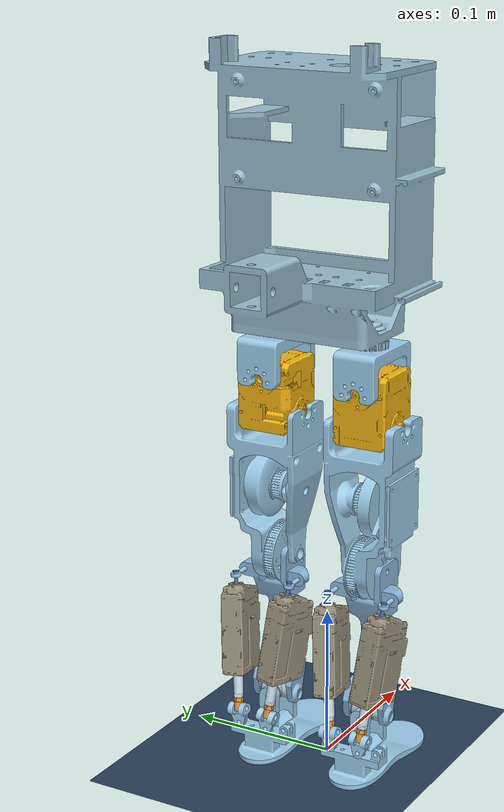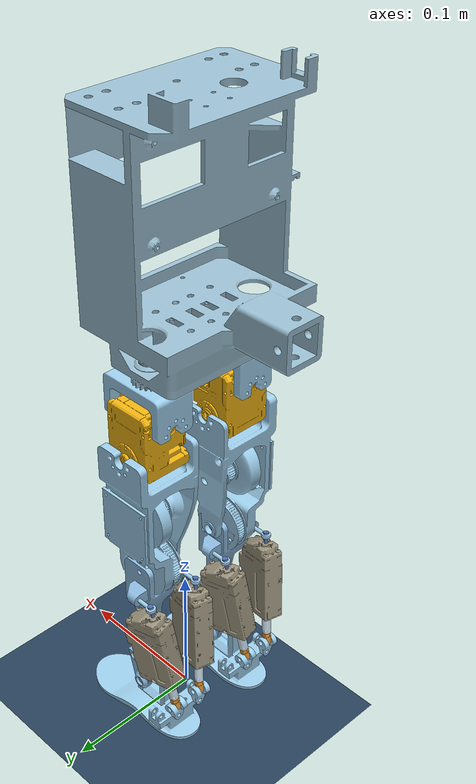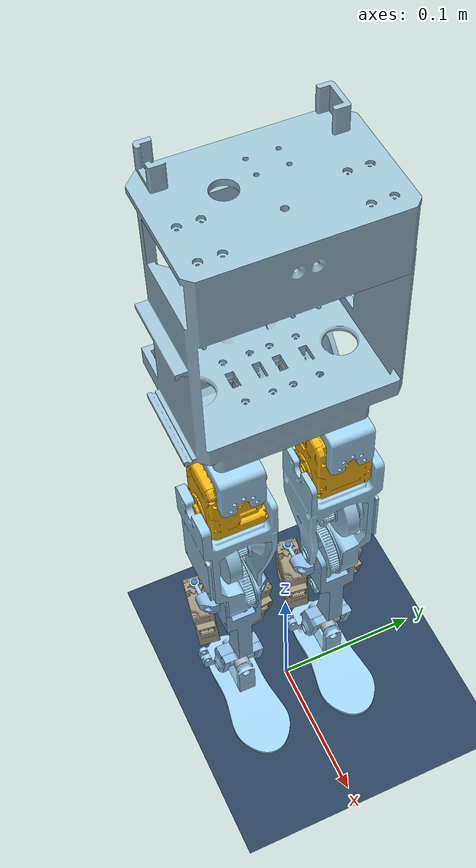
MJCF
<mujoco model="base_legs_scene">
    <include file="base_legs.xml" />
    <statistic center="0 0 0.2" extent="0.6" />
    <visual>
        <headlight diffuse="0.6 0.6 0.6" ambient="0.3 0.3 0.3" specular="0 0 0" />
        <rgba haze="0.15 0.25 0.35 1" />
        <global azimuth="160" elevation="-20" />
    </visual>
    <asset>
        <texture type="skybox" builtin="gradient" rgb1="0.3 0.5 0.7" rgb2="0 0 0" width="512" height="3072" />
        <texture type="2d" name="groundplane" builtin="checker" mark="edge" rgb1="0.2 0.3 0.4" rgb2="0.1 0.2 0.3" markrgb="0.8 0.8 0.8" width="300" height="300" />
        <material name="groundplane" texture="groundplane" texuniform="true" texrepeat="5 5" reflectance="0.0" />
    </asset>
    <worldbody>
        <light pos="0 0 1.5" dir="0 0 -1" directional="true" />
        <geom name="floor" size="0 0 0.05" type="plane" material="groundplane" />
    </worldbody>
</mujoco>

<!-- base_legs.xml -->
<mujoco model="base_legs">
  <compiler angle="radian" />
  <asset>
    <mesh name="body_link_visual" file="../assemblies/no_body/meshes/body_link_visual.stl" />
    <mesh name="body_link_collision" file="collisions/body_link_collision.stl" />
    <mesh name="left_hip_yaw_link_visual" file="../assemblies/left_3R+RH5_leg/meshes/left_hip_yaw_link_visual.stl" />
    <mesh name="left_hip_roll_link_visual" file="../assemblies/left_3R+RH5_leg/meshes/left_hip_roll_link_visual.stl" />
    <mesh name="left_hip_roll_link_collision" file="collisions/left_hip_roll_link_collision.stl" />
    <mesh name="left_hip_pitch_link_visual" file="../assemblies/left_3R+RH5_leg/meshes/left_hip_pitch_link_visual.stl" />
    <mesh name="left_hip_pitch_link_collision" file="collisions/left_hip_pitch_link_collision.stl" />
    <mesh name="left_calf_link_visual" file="../assemblies/left_3R+RH5_leg/meshes/left_calf_link_visual.stl" />
    <mesh name="left_calf_link_collision" file="collisions/left_calf_link_collision.stl" />
    <mesh name="left_ank_pitch_link_visual" file="../assemblies/left_3R+RH5_leg/meshes/left_ank_pitch_link_visual.stl" />
    <mesh name="left_ank_roll_link_visual" file="../assemblies/left_3R+RH5_leg/meshes/left_ank_roll_link_visual.stl" />
    <mesh name="left_ank_roll_link_collision" file="collisions/left_ank_roll_link_collision.stl" />
    <mesh name="left_ank_rr_link_visual" file="../assemblies/left_3R+RH5_leg/meshes/left_ank_rr_link_visual.stl" />
    <mesh name="left_12lf_rod_end_visual" file="../assemblies/left_3R+RH5_leg/meshes/left_12lf_rod_end_visual.stl" />
    <mesh name="left_ank_rr_link_2_visual" file="../assemblies/left_3R+RH5_leg/meshes/left_ank_rr_link_2_visual.stl" />
    <mesh name="left_12lf_rod_end_2_visual" file="../assemblies/left_3R+RH5_leg/meshes/left_12lf_rod_end_2_visual.stl" />
    <mesh name="left_ball_joint_container_visual" file="../assemblies/left_3R+RH5_leg/meshes/left_ball_joint_container_visual.stl" />
    <mesh name="left_ball_joint_ball_visual" file="../assemblies/left_3R+RH5_leg/meshes/left_ball_joint_ball_visual.stl" />
    <mesh name="left_12lf_visual" file="../assemblies/left_3R+RH5_leg/meshes/left_12lf_visual.stl" />
    <mesh name="left_12lf_rod_visual" file="../assemblies/left_3R+RH5_leg/meshes/left_12lf_rod_visual.stl" />
    <mesh name="left_ball_joint_container_2_visual" file="../assemblies/left_3R+RH5_leg/meshes/left_ball_joint_container_2_visual.stl" />
    <mesh name="left_ball_joint_ball_2_visual" file="../assemblies/left_3R+RH5_leg/meshes/left_ball_joint_ball_2_visual.stl" />
    <mesh name="left_12lf_2_visual" file="../assemblies/left_3R+RH5_leg/meshes/left_12lf_2_visual.stl" />
    <mesh name="left_12lf_rod_2_visual" file="../assemblies/left_3R+RH5_leg/meshes/left_12lf_rod_2_visual.stl" />
    <mesh name="right_hip_yaw_link_visual" file="../assemblies/right_3R+RH5_leg/meshes/right_hip_yaw_link_visual.stl" />
    <mesh name="right_hip_roll_link_visual" file="../assemblies/right_3R+RH5_leg/meshes/right_hip_roll_link_visual.stl" />
    <mesh name="right_hip_roll_link_collision" file="collisions/right_hip_roll_link_collision.stl" />
    <mesh name="right_hip_pitch_link_visual" file="../assemblies/right_3R+RH5_leg/meshes/right_hip_pitch_link_visual.stl" />
    <mesh name="right_hip_pitch_link_collision" file="collisions/right_hip_pitch_link_collision.stl" />
    <mesh name="right_calf_link_visual" file="../assemblies/right_3R+RH5_leg/meshes/right_calf_link_visual.stl" />
    <mesh name="right_calf_link_collision" file="collisions/right_calf_link_collision.stl" />
    <mesh name="right_ank_pitch_link_visual" file="../assemblies/right_3R+RH5_leg/meshes/right_ank_pitch_link_visual.stl" />
    <mesh name="right_ank_roll_link_visual" file="../assemblies/right_3R+RH5_leg/meshes/right_ank_roll_link_visual.stl" />
    <mesh name="right_ank_roll_link_collision" file="collisions/right_ank_roll_link_collision.stl" />
    <mesh name="right_ank_rr_link_visual" file="../assemblies/right_3R+RH5_leg/meshes/right_ank_rr_link_visual.stl" />
    <mesh name="right_12lf_rod_end_visual" file="../assemblies/right_3R+RH5_leg/meshes/right_12lf_rod_end_visual.stl" />
    <mesh name="right_ank_rr_link_2_visual" file="../assemblies/right_3R+RH5_leg/meshes/right_ank_rr_link_2_visual.stl" />
    <mesh name="right_12lf_rod_end_2_visual" file="../assemblies/right_3R+RH5_leg/meshes/right_12lf_rod_end_2_visual.stl" />
    <mesh name="right_ball_joint_container_visual" file="../assemblies/right_3R+RH5_leg/meshes/right_ball_joint_container_visual.stl" />
    <mesh name="right_ball_joint_ball_visual" file="../assemblies/right_3R+RH5_leg/meshes/right_ball_joint_ball_visual.stl" />
    <mesh name="right_12lf_visual" file="../assemblies/right_3R+RH5_leg/meshes/right_12lf_visual.stl" />
    <mesh name="right_12lf_rod_visual" file="../assemblies/right_3R+RH5_leg/meshes/right_12lf_rod_visual.stl" />
    <mesh name="right_ball_joint_container_2_visual" file="../assemblies/right_3R+RH5_leg/meshes/right_ball_joint_container_2_visual.stl" />
    <mesh name="right_ball_joint_ball_2_visual" file="../assemblies/right_3R+RH5_leg/meshes/right_ball_joint_ball_2_visual.stl" />
    <mesh name="right_12lf_2_visual" file="../assemblies/right_3R+RH5_leg/meshes/right_12lf_2_visual.stl" />
    <mesh name="right_12lf_rod_2_visual" file="../assemblies/right_3R+RH5_leg/meshes/right_12lf_rod_2_visual.stl" />
  </asset>
  <worldbody>
    <body name="body_link" pos="0 0 0" quat="1 0 0 0">
      <inertial pos="-0.014404 -0.000232 0.311533" quat="1.000000 0.000000 0.000000 0.000000" mass="0.13263292" diaginertia="1.21631e-04 8.49701e-05 1.56471e-04" />
      <freejoint />
      <site name="torso" fromto="0.01 0 0.4 -0.01 0 0.4" type="cylinder" size="0.005 0.005 1" group="3" />
      <geom rgba="0.602652 0.747582 0.822925 1" mesh="body_link_visual" class="visual" />
      <geom rgba="0.602652 0.747582 0.822925 1" mesh="body_link_collision" class="collision" />
      <body name="hip_yaw_link" pos="-0.0064 0.034 0.2855" quat="1 0 0 0">
        <inertial pos="0 0 -0.00983905" quat="0 0.707107 0 0.707107" mass="0.00902588" diaginertia="3.87214e-06 3.84085e-06 1.32305e-06" />
        <joint name="left_hip_yaw" pos="0 0 0" axis="0 0 1" range="-1.5708 1.5708" damping="1.084" armature="0.045" />
        <geom rgba="0.615686 0.811765 0.929412 1" mesh="left_hip_yaw_link_visual" class="visual" />
        <body name="hip_roll_link" pos="0.019 0 -0.026" quat="0 -0.707107 0 -0.707107">
          <inertial pos="-0.0120002 -0.000495888 -0.018504" quat="0.654458 0.267712 0.652088 0.27349" mass="0.0980124" diaginertia="2.78674e-05 2.68492e-05 2.02212e-05" />
          <joint name="left_hip_roll" pos="0 0 0" axis="0 0 1" range="-1.5708 1.5708" damping="1.084" armature="0.045" />
          <geom rgba="0.950187 0.706789 0.0616121 1" mesh="left_hip_roll_link_visual" class="visual" />
          <geom rgba="0.950187 0.706789 0.0616121 1" mesh="left_hip_roll_link_collision" class="collision" />
          <body name="left_hip_pitch_link" pos="-0.024 -0.019 -0.019" quat="0.5 -0.5 0.5 0.5">
            <inertial pos="-0.000216322 0.0529867 0.0147881" quat="0.675246 0.698079 0.174756 -0.161829" mass="0.0940846" diaginertia="6.31906e-05 6.27828e-05 2.1698e-05" />
            <joint name="left_hip_pitch" pos="0 0 0" axis="0 0 1" range="-1.5708 1.5708" damping="1.084" armature="0.045" />
            <geom rgba="0.616536 0.807302 0.921761 1" mesh="left_hip_pitch_link_visual" class="visual" />
            <geom rgba="0.616536 0.807302 0.921761 1" mesh="left_hip_pitch_link_collision" class="collision" />
            <body name="left_calf_link" pos="0 0.096 0.0274" quat="0 -1 0 0">
              <inertial pos="-0.00391362 -0.04364 0.00818493" quat="0.707645 0.706509 -0.0088213 -0.00239695" mass="0.0162906" diaginertia="1.55474e-05 1.48072e-05 1.93298e-06" />
              <joint name="left_knee" pos="0 0 0" axis="0 0 1" range="-1.5708 2.26893" damping="1.084" armature="0.045" />
              <geom rgba="0.553972 0.731614 0.877157 1" mesh="left_calf_link_visual" class="visual" />
              <geom rgba="0.553972 0.731614 0.877157 1" mesh="left_calf_link_collision" class="collision" />
              <body name="ank_pitch_link" pos="0 -0.1 -0.0062" quat="0 0.707107 -0.707107 0">
                <inertial pos="4.02697e-08 0.000595283 -0.0145999" quat="1 0 -2.35914e-06 0" mass="0.00422384" diaginertia="4.37053e-07 3.97827e-07 8.88586e-08" />
                <joint name="left_ank_pitch" pos="0 0 0" axis="0 0 1" range="-1.5708 1.5708" damping="1.084" armature="0.045" />
                <geom rgba="0.631892 0.726687 0.783564 1" mesh="left_ank_pitch_link_visual" class="visual" />
                <body name="ank_roll_link" pos="0 0.0015 -0.0146" quat="0.5 -0.5 -0.5 -0.5">
                  <inertial pos="-6.36615e-10 0.0272401 -0.00561699" quat="0.99781 -0.0661477 0 0" mass="0.0138445" diaginertia="1.01509e-05 8.76769e-06 2.79508e-06" />
                  <joint name="left_ank_roll" pos="0 0 0" axis="0 0 1" range="-1.5708 1.5708" damping="1.084" armature="0.045" />
                  <geom rgba="0.615686 0.811765 0.929412 1" mesh="left_ank_roll_link_visual" class="visual" />
                  <geom rgba="0.615686 0.811765 0.929412 1" mesh="left_ank_roll_link_collision" class="collision" />
                  <body name="ank_rr_link" pos="-0.01 0.0125 -0.0336" quat="0.998721 0 0 -0.0505586">
                    <inertial pos="3.45935e-05 -0.00629994 0" quat="0.479847 0.519372 -0.479847 0.519372" mass="0.000442898" diaginertia="1.3107e-08 9.09397e-09 8.37402e-09" />
                    <joint name="left_ank_R11" pos="0 0 0" axis="0 0 1" range="-1.5708 1.5708" />
                    <geom rgba="0.615686 0.811765 0.929412 1" mesh="left_ank_rr_link_visual" class="visual" />
                    <body name="12lf_rod_end" pos="0 -0.01 0" quat="0.70532 -0.0502423 -0.70532 0.0502423">
                      <inertial pos="-4.47352e-11 -0.00384222 6.43842e-06" quat="0.500199 0.499801 -0.499801 0.500199" mass="0.000854205" diaginertia="1.27035e-08 1.1841e-08 3.35496e-09" />
                      <joint name="left_ank_R21" pos="0 0 0" axis="0 0 1" range="-1.5708 1.5708" />
                      <geom rgba="0.927718 0.610493 0.218477 1" mesh="left_12lf_rod_end_visual" class="visual" />
                    </body>
                  </body>
                  <body name="ank_rr_link_2" pos="0.01 0.0125 -0.0336" quat="0 0.0504983 -0.998724 0">
                    <inertial pos="3.45935e-05 -0.00629994 0" quat="0.479847 0.519372 -0.479847 0.519372" mass="0.000442898" diaginertia="1.3107e-08 9.09397e-09 8.37402e-09" />
                    <joint name="left_ank_R12" pos="0 0 0" axis="0 0 1" range="-1.5708 1.5708" />
                    <geom rgba="0.615686 0.811765 0.929412 1" mesh="left_ank_rr_link_2_visual" class="visual" />
                    <body name="12lf_rod_end_2" pos="0 -0.01 0" quat="0.705319 0.0502506 -0.705319 -0.0502506">
                      <inertial pos="-4.47352e-11 -0.00384222 6.43842e-06" quat="0.500199 0.499801 -0.499801 0.500199" mass="0.000854205" diaginertia="1.27035e-08 1.1841e-08 3.35496e-09" />
                      <joint name="left_ank_R22" pos="0 0 0" axis="0 0 1" range="-1.5708 1.5708" />
                      <geom rgba="0.927718 0.610493 0.218477 1" mesh="left_12lf_rod_end_2_visual" class="visual" />
                    </body>
                  </body>
                </body>
              </body>
              <body name="ball_joint_container" pos="0.008 -0.015 0.0283" quat="0.0357503 -0.706202 -0.0357503 0.706202">
                <inertial pos="0 0 -0.00971253" quat="0.707107 0 0 0.707107" mass="4.80374e-05" diaginertia="8.47542e-10 7.18655e-10 1.86253e-10" />
                <joint name="left_ank_B11" pos="0 0 0" axis="0 0 1" range="-0.785398 0.785398" />
                <geom rgba="0.615686 0.811765 0.929412 1" mesh="left_ball_joint_container_visual" class="visual" />
                <body name="ball_joint_ball" pos="0 0 -0.0115" quat="0.0502423 0.70532 0.0502423 0.70532">
                  <inertial pos="0 -0.00103087 0" quat="0.707107 0.707107 0 0" mass="4.40538e-05" diaginertia="3.1285e-10 3.12853e-10 6.25696e-11" />
                  <joint name="left_ank_B21" pos="0 0 0" axis="0 0 1" range="-0.785398 0.785398" />
                  <geom rgba="0.32913 0.443105 0.692049 1" mesh="left_ball_joint_ball_visual" class="visual" />
                  <body name="12lf" pos="0 -0.00643875 0" quat="0.70458 -0.70458 0.0597268 0.0597268">
                    <inertial pos="0.00490842 -0.000138024 -0.029947" quat="0.709913 0.00132323 0.0043477 0.704274" mass="0.0447822" diaginertia="1.81889e-05 1.52606e-05 5.14874e-06" />
                    <joint name="left_ank_B31" pos="0 0 0" axis="0 0 1" range="-0.785398 0.785398" />
                    <geom rgba="0.620044 0.588367 0.498971 1" mesh="left_12lf_visual" class="visual" />
                    <body name="12lf_rod" pos="2.27221e-06 0 -0.07266" quat="0 -0.452653 0.891687 0">
                      <inertial pos="-6.32221e-07 4.69333e-07 -0.0128934" quat="1 -2.00488e-05 -2.69482e-05 -5.4028e-10" mass="0.00250883" diaginertia="2.69445e-07 2.69445e-07 1.78098e-08" />
                      <joint name="left_ank_act1" pos="0 0 0" axis="0 0 1" type="slide" range="0 0.04" />
                      <geom rgba="0.802503 0.893406 0.944918 1" mesh="left_12lf_rod_visual" class="visual" />
                    </body>
                  </body>
                </body>
              </body>
              <body name="ball_joint_container_2" pos="0.008 -0.015 -0.0115" quat="0.706205 -0.0357077 -0.706205 0.0357077">
                <inertial pos="0 0 -0.00971253" quat="0.707107 0 0 0.707107" mass="4.80374e-05" diaginertia="8.47542e-10 7.18655e-10 1.86253e-10" />
                <joint name="left_ank_B12" pos="0 0 0" axis="0 0 1" range="-0.785398 0.785398" />
                <geom rgba="0.615686 0.811765 0.929412 1" mesh="left_ball_joint_container_2_visual" class="visual" />
                <body name="ball_joint_ball_2" pos="0 0 -0.0115" quat="0.705319 0.0502506 -0.705319 -0.0502506">
                  <inertial pos="0 -0.00103087 0" quat="0.707107 0.707107 0 0" mass="4.40538e-05" diaginertia="3.1285e-10 3.12853e-10 6.25696e-11" />
                  <joint name="left_ank_B22" pos="0 0 0" axis="0 0 1" range="-0.785398 0.785398" />
                  <geom rgba="0.32913 0.443105 0.692049 1" mesh="left_ball_joint_ball_2_visual" class="visual" />
                  <body name="12lf_2" pos="0 -0.00643875 0" quat="0.704247 -0.704247 -0.0635296 -0.0635296">
                    <inertial pos="0.00490842 -0.000138024 -0.029947" quat="0.709913 0.00132323 0.0043477 0.704274" mass="0.0447822" diaginertia="1.81889e-05 1.52606e-05 5.14874e-06" />
                    <joint name="left_ank_B32" pos="0 0 0" axis="0 0 1" range="-0.785398 0.785398" />
                    <geom rgba="0.620044 0.588367 0.498971 1" mesh="left_12lf_2_visual" class="visual" />
                    <body name="12lf_rod_2" pos="2.27221e-06 0 -0.07266" quat="0 -0.452653 0.891687 0">
                      <inertial pos="-6.32221e-07 4.69333e-07 -0.0128934" quat="1 -2.00488e-05 -2.69482e-05 -5.4028e-10" mass="0.00250883" diaginertia="2.69445e-07 2.69445e-07 1.78098e-08" />
                      <joint name="left_ank_act2" pos="0 0 0" axis="0 0 1" type="slide" range="0 0.04" />
                      <geom rgba="0.802503 0.893406 0.944918 1" mesh="left_12lf_rod_2_visual" class="visual" />
                    </body>
                  </body>
                </body>
              </body>
            </body>
          </body>
        </body>
      </body>
      <body name="hip_yaw_link_2" pos="-0.0064 -0.034 0.2855" quat="1 0 0 0">
        <inertial pos="0 0 -0.00983905" quat="0 0.707107 0 0.707107" mass="0.00902588" diaginertia="3.87214e-06 3.84085e-06 1.32305e-06" />
        <joint name="right_hip_yaw" pos="0 0 0" axis="0 0 1" range="-1.5708 1.5708" damping="1.084" armature="0.045" />
        <geom rgba="0.615686 0.811765 0.929412 1" mesh="right_hip_yaw_link_visual" class="visual" />
        <body name="hip_roll_link_2" pos="-0.019 0 -0.026" quat="0.707107 0 -0.707107 0">
          <inertial pos="-0.0120002 -0.000495888 -0.018504" quat="0.654458 0.267712 0.652088 0.27349" mass="0.0980124" diaginertia="2.78674e-05 2.68492e-05 2.02212e-05" />
          <joint name="right_hip_roll" pos="0 0 0" axis="0 0 1" range="-1.5708 1.5708" damping="1.084" armature="0.045" />
          <geom rgba="0.950187 0.706789 0.0616121 1" mesh="right_hip_roll_link_visual" class="visual" />
          <geom rgba="0.950187 0.706789 0.0616121 1" mesh="right_hip_roll_link_collision" class="collision" />
          <body name="right_hip_pitch_link" pos="-0.024 -0.019 -0.019" quat="0.5 -0.5 0.5 0.5">
            <inertial pos="-1.47413e-05 0.0529867 0.0147881" quat="0.694289 0.719612 0.00585228 -0.00935198" mass="0.0940846" diaginertia="6.31005e-05 6.28744e-05 2.17054e-05" />
            <joint name="right_hip_pitch" pos="0 0 0" axis="0 0 1" range="-1.5708 1.5708" damping="1.084" armature="0.045" />
            <geom rgba="0.616536 0.807302 0.921761 1" mesh="right_hip_pitch_link_visual" class="visual" />
            <geom rgba="0.616536 0.807302 0.921761 1" mesh="right_hip_pitch_link_collision" class="collision" />
            <body name="right_calf_link" pos="0 0.096 0.0274" quat="0 0 -1 0">
              <inertial pos="-0.0039136 0.04364 0.0081849" quat="0.706509 0.707645 0.00239487 0.00882362" mass="0.0162906" diaginertia="1.55475e-05 1.48072e-05 1.933e-06" />
              <joint name="right_knee" pos="0 0 0" axis="0 0 1" range="-1.5708 1.5708" damping="1.084" armature="0.045" />
              <geom rgba="0.553972 0.731614 0.877157 1" mesh="right_calf_link_visual" class="visual" />
              <geom rgba="0.553972 0.731614 0.877157 1" mesh="right_calf_link_collision" class="collision" />
              <body name="ank_pitch_link_2" pos="0 0.1 -0.0062" quat="0 -0.707107 0.707107 0">
                <inertial pos="4.02697e-08 0.000595283 -0.0145999" quat="1 0 -2.35914e-06 0" mass="0.00422384" diaginertia="4.37053e-07 3.97827e-07 8.88586e-08" />
                <joint name="right_ank_pitch" pos="0 0 0" axis="0 0 1" range="-1.5708 1.5708" damping="1.084" armature="0.045" />
                <geom rgba="0.631892 0.726687 0.783564 1" mesh="right_ank_pitch_link_visual" class="visual" />
                <body name="ank_roll_link_2" pos="0 0.0015 -0.0146" quat="0.5 -0.5 0.5 0.5">
                  <inertial pos="-6.36615e-10 0.0272401 -0.00561699" quat="0.99781 -0.0661477 0 0" mass="0.0138445" diaginertia="1.01509e-05 8.76769e-06 2.79508e-06" />
                  <joint name="right_ank_roll" pos="0 0 0" axis="0 0 1" range="-1.5708 1.5708" damping="1.084" armature="0.045" />
                  <geom rgba="0.615686 0.811765 0.929412 1" mesh="right_ank_roll_link_visual" class="visual" />
                  <geom rgba="0.615686 0.811765 0.929412 1" mesh="right_ank_roll_link_collision" class="collision" />
                  <body name="ank_rr_link_3" pos="-0.01 0.0125 -0.0336" quat="0.998721 0 0 -0.0505586">
                    <inertial pos="3.45935e-05 -0.00629994 0" quat="0.479847 0.519372 -0.479847 0.519372" mass="0.000442898" diaginertia="1.3107e-08 9.09397e-09 8.37402e-09" />
                    <joint name="right_ank_R11" pos="0 0 0" axis="0 0 1" range="-1.5708 1.5708" />
                    <geom rgba="0.615686 0.811765 0.929412 1" mesh="right_ank_rr_link_visual" class="visual" />
                    <body name="12lf_rod_end_3" pos="0 -0.01 0" quat="0.70532 -0.0502423 -0.70532 0.0502423">
                      <inertial pos="-4.47352e-11 -0.00384222 6.43842e-06" quat="0.500199 0.499801 -0.499801 0.500199" mass="0.000854205" diaginertia="1.27035e-08 1.1841e-08 3.35496e-09" />
                      <joint name="right_ank_R21" pos="0 0 0" axis="0 0 1" range="-1.5708 1.5708" />
                      <geom rgba="0.927718 0.610493 0.218477 1" mesh="right_12lf_rod_end_visual" class="visual" />
                    </body>
                  </body>
                  <body name="ank_rr_link_4" pos="0.01 0.0125 -0.0336" quat="0 -0.0504983 0.998724 0">
                    <inertial pos="3.45935e-05 -0.00629994 0" quat="0.479847 0.519372 -0.479847 0.519372" mass="0.000442898" diaginertia="1.3107e-08 9.09397e-09 8.37402e-09" />
                    <joint name="right_ank_R12" pos="0 0 0" axis="0 0 1" range="-1.5708 1.5708" />
                    <geom rgba="0.615686 0.811765 0.929412 1" mesh="right_ank_rr_link_2_visual" class="visual" />
                    <body name="12lf_rod_end_4" pos="0 -0.01 0" quat="0.705319 0.0502506 -0.705319 -0.0502506">
                      <inertial pos="-4.47352e-11 -0.00384222 6.43842e-06" quat="0.500199 0.499801 -0.499801 0.500199" mass="0.000854205" diaginertia="1.27035e-08 1.1841e-08 3.35496e-09" />
                      <joint name="right_ank_R22" pos="0 0 0" axis="0 0 1" range="-1.5708 1.5708" />
                      <geom rgba="0.927718 0.610493 0.218477 1" mesh="right_12lf_rod_end_2_visual" class="visual" />
                    </body>
                  </body>
                </body>
              </body>
              <body name="ball_joint_container_3" pos="0.008 0.015 -0.0115" quat="0.706202 0.0357503 -0.706202 -0.0357503">
                <inertial pos="0 0 -0.00971253" quat="0.707107 0 0 0.707107" mass="4.80374e-05" diaginertia="8.47542e-10 7.18655e-10 1.86253e-10" />
                <joint name="right_ank_B11" pos="0 0 0" axis="0 0 1" range="-0.785398 0.785398" />
                <geom rgba="0.615686 0.811765 0.929412 1" mesh="right_ball_joint_container_visual" class="visual" />
                <body name="ball_joint_ball_3" pos="0 0 -0.0115" quat="0.0502423 0.70532 0.0502423 0.70532">
                  <inertial pos="0 -0.00103087 0" quat="0.707107 0.707107 0 0" mass="4.40538e-05" diaginertia="3.1285e-10 3.12853e-10 6.25696e-11" />
                  <joint name="right_ank_B21" pos="0 0 0" axis="0 0 1" range="-0.785398 0.785398" />
                  <geom rgba="0.32913 0.443105 0.692049 1" mesh="right_ball_joint_ball_visual" class="visual" />
                  <body name="12lf_3" pos="0 -0.00643875 0" quat="0.70458 -0.70458 0.0597268 0.0597268">
                    <inertial pos="0.00490842 -0.000138024 -0.029947" quat="0.709913 0.00132323 0.0043477 0.704274" mass="0.0447822" diaginertia="1.81889e-05 1.52606e-05 5.14874e-06" />
                    <joint name="right_ank_B31" pos="0 0 0" axis="0 0 1" range="-0.785398 0.785398" />
                    <geom rgba="0.620044 0.588367 0.498971 1" mesh="right_12lf_visual" class="visual" />
                    <body name="12lf_rod_3" pos="2.27221e-06 0 -0.07266" quat="0 -0.452653 0.891687 0">
                      <inertial pos="-6.32221e-07 4.69333e-07 -0.0128934" quat="1 -2.00488e-05 -2.69482e-05 -5.4028e-10" mass="0.00250883" diaginertia="2.69445e-07 2.69445e-07 1.78098e-08" />
                      <joint name="right_ank_act1" pos="0 0 0" axis="0 0 1" type="slide" range="0 0.04" />
                      <geom rgba="0.802503 0.893406 0.944918 1" mesh="right_12lf_rod_visual" class="visual" />
                    </body>
                  </body>
                </body>
              </body>
              <body name="ball_joint_container_4" pos="0.008 0.015 0.0283" quat="0.706205 -0.0357077 -0.706205 0.0357077">
                <inertial pos="0 0 -0.00971253" quat="0.707107 0 0 0.707107" mass="4.80374e-05" diaginertia="8.47542e-10 7.18655e-10 1.86253e-10" />
                <joint name="right_ank_B12" pos="0 0 0" axis="0 0 1" range="-0.785398 0.785398" />
                <geom rgba="0.615686 0.811765 0.929412 1" mesh="right_ball_joint_container_2_visual" class="visual" />
                <body name="ball_joint_ball_4" pos="0 0 -0.0115" quat="0.0502506 0.705319 0.0502506 0.705319">
                  <inertial pos="0 -0.00103087 0" quat="0.707107 0.707107 0 0" mass="4.40538e-05" diaginertia="3.1285e-10 3.12853e-10 6.25696e-11" />
                  <joint name="right_ank_B22" pos="0 0 0" axis="0 0 1" range="-0.785398 0.785398" />
                  <geom rgba="0.32913 0.443105 0.692049 1" mesh="right_ball_joint_ball_2_visual" class="visual" />
                  <body name="12lf_4" pos="0 -0.00643875 0" quat="0.704247 -0.704247 -0.0635296 -0.0635296">
                    <inertial pos="0.00490842 -0.000138024 -0.029947" quat="0.709913 0.00132323 0.0043477 0.704274" mass="0.0447822" diaginertia="1.81889e-05 1.52606e-05 5.14874e-06" />
                    <joint name="right_ank_B32" pos="0 0 0" axis="0 0 1" range="-0.785398 0.785398" />
                    <geom rgba="0.620044 0.588367 0.498971 1" mesh="right_12lf_2_visual" class="visual" />
                    <body name="12lf_rod_4" pos="2.27221e-06 0 -0.07266" quat="0 -0.452653 0.891687 0">
                      <inertial pos="-6.32221e-07 4.69333e-07 -0.0128934" quat="1 -2.00488e-05 -2.69482e-05 -5.4028e-10" mass="0.00250883" diaginertia="2.69445e-07 2.69445e-07 1.78098e-08" />
                      <joint name="right_ank_act2" pos="0 0 0" axis="0 0 1" type="slide" range="0 0.04" />
                      <geom rgba="0.802503 0.893406 0.944918 1" mesh="right_12lf_rod_2_visual" class="visual" />
                    </body>
                  </body>
                </body>
              </body>
            </body>
          </body>
        </body>
      </body>
    </body>
  </worldbody>
  <contact>
    <exclude body1="hip_roll_link" body2="left_hip_pitch_link" />
    <exclude body1="hip_roll_link" body2="left_calf_link" />
    <exclude body1="hip_roll_link" body2="ank_roll_link" />
    <exclude body1="left_hip_pitch_link" body2="left_calf_link" />
    <exclude body1="left_hip_pitch_link" body2="ank_roll_link" />
    <exclude body1="left_calf_link" body2="ank_roll_link" />
    <exclude body1="hip_roll_link_2" body2="right_hip_pitch_link" />
    <exclude body1="hip_roll_link_2" body2="right_calf_link" />
    <exclude body1="hip_roll_link_2" body2="ank_roll_link_2" />
    <exclude body1="right_hip_pitch_link" body2="right_calf_link" />
    <exclude body1="right_hip_pitch_link" body2="ank_roll_link_2" />
    <exclude body1="right_calf_link" body2="ank_roll_link_2" />
  </contact>
  <equality>
    <weld body1="12lf_rod_end" body2="12lf_rod" solimp="0.9999 0.9999 0.001 0.5 2" solref="0.0001 1" />
    <weld body1="12lf_rod_end_2" body2="12lf_rod_2" solimp="0.9999 0.9999 0.001 0.5 2" solref="0.0001 1" />
    <weld body1="12lf_rod_end_3" body2="12lf_rod_3" solimp="0.9999 0.9999 0.001 0.5 2" solref="0.0001 1" />
    <weld body1="12lf_rod_end_4" body2="12lf_rod_4" solimp="0.9999 0.9999 0.001 0.5 2" solref="0.0001 1" />
  </equality>
  <default>
    <joint frictionloss="0.03" />
    <position forcelimited="false" />
    <geom type="mesh" solref=".004 1" />
    <default class="visual">
      <geom contype="0" conaffinity="0" group="2" density="0" />
    </default>
    <default class="collision">
      <geom group="3" />
    </default>
  </default>
  <actuator>
    <motor name="left_hip_yaw_act" joint="left_hip_yaw" />
    <motor name="left_hip_roll_act" joint="left_hip_roll" />
    <motor name="left_hip_pitch_act" joint="left_hip_pitch" />
    <motor name="left_knee_act" joint="left_knee" />
    <motor name="left_ank_pitch_act" joint="left_ank_pitch" />
    <motor name="left_ank_roll_act" joint="left_ank_roll" />
    <motor name="right_hip_yaw_act" joint="right_hip_yaw" />
    <motor name="right_hip_roll_act" joint="right_hip_roll" />
    <motor name="right_hip_pitch_act" joint="right_hip_pitch" />
    <motor name="right_knee_act" joint="right_knee" />
    <motor name="right_ank_pitch_act" joint="right_ank_pitch" />
    <motor name="right_ank_roll_act" joint="right_ank_roll" />
  </actuator>
</mujoco>
